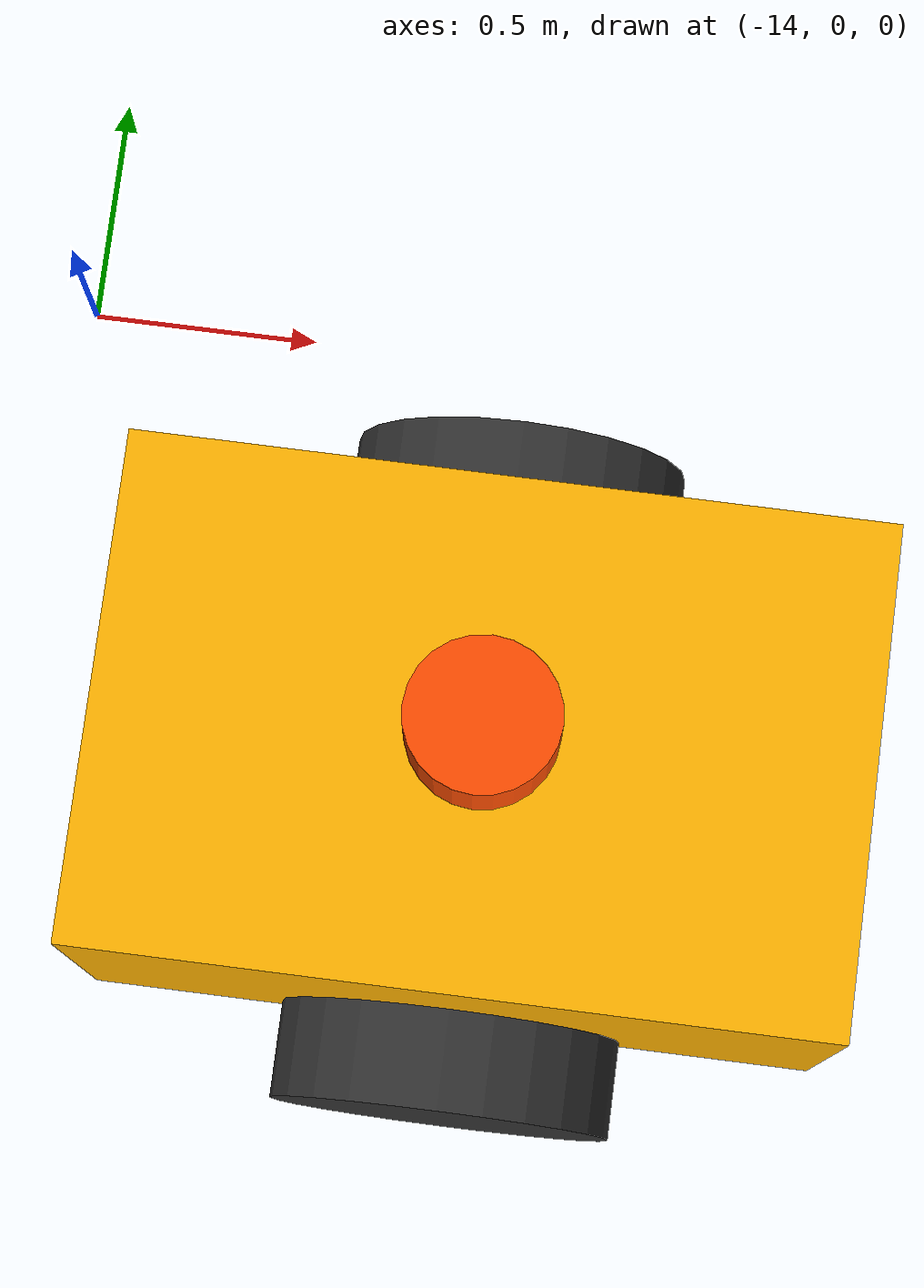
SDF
<?xml version="1.0" ?>
<sdf version="1.8">
  <!-- AMR 1 (Dock 1) -->
<model name="amr_1">
  <!-- z lowered from 0.8 -> 0.65 so the wheel bottoms sit exactly on the
       ground plane at spawn (chassis_z + wheel_z - wheel_radius = 0),
       instead of dropping 0.15 m before settling. -->
  <pose>-13 -1 0.65 0 0 0</pose>

  <link name="chassis">
    <visual name="v"><geometry><box><size>1.5 1.0 0.8</size></box></geometry><material><diffuse>1.0 0.7 0.0 1</diffuse><pbr><metal><albedo_color>1.0 0.7 0.0 1</albedo_color></metal></pbr></material></visual>
    <collision name="c"><geometry><box><size>1.5 1.0 0.8</size></box></geometry></collision>
    <!-- Corrected box inertia: Ixx=1/12 m(y^2+z^2), Iyy=1/12 m(x^2+z^2), Izz=1/12 m(x^2+y^2) for a 1.5x1.0x0.8 m, 50 kg box -->
    <inertial><mass>50</mass><inertia><ixx>6.833</ixx><iyy>12.042</iyy><izz>13.542</izz></inertia></inertial>
    <sensor name="lidar" type="gpu_lidar"><pose>0 0 0.5 0 0 0</pose><update_rate>20</update_rate><ray><scan><horizontal><samples>360</samples><resolution>1</resolution><min_angle>-3.14159</min_angle><max_angle>3.14159</max_angle></horizontal></scan><range><min>0.3</min><max>15.0</max></range></ray><always_on>1</always_on><visualize>true</visualize></sensor>
    <visual name="lidar_vis"><pose>0 0 0.5 0 0 0</pose><geometry><cylinder><radius>0.15</radius><length>0.2</length></cylinder></geometry><material><diffuse>1.0 0.3 0.0 1</diffuse><pbr><metal><albedo_color>1.0 0.3 0.0 1</albedo_color></metal></pbr></material></visual>
  </link>

  <link name="left_wheel">
    <pose>0 0.6 -0.3 -1.5707 0 0</pose>
    <visual name="v"><geometry><cylinder><radius>0.35</radius><length>0.2</length></cylinder></geometry><material><diffuse>0.2 0.2 0.2 1</diffuse></material></visual>
    <collision name="c">
      <geometry><cylinder><radius>0.35</radius><length>0.2</length></cylinder></geometry>
      <surface><friction><ode><mu>1.0</mu><mu2>1.0</mu2><fdir1>1 0 0</fdir1></ode></friction></surface>
    </collision>
    <!-- Cylinder inertia about its own axis (local Z, = spin axis): Izz=1/2 m r^2.
         Transverse: Ixx=Iyy=1/12 m(3r^2+h^2), for r=0.35, h=0.2, m=5 -->
    <inertial><mass>5</mass><inertia><ixx>0.170</ixx><iyy>0.170</iyy><izz>0.306</izz></inertia></inertial>
  </link>
  <link name="right_wheel">
    <pose>0 -0.6 -0.3 -1.5707 0 0</pose>
    <visual name="v"><geometry><cylinder><radius>0.35</radius><length>0.2</length></cylinder></geometry><material><diffuse>0.2 0.2 0.2 1</diffuse></material></visual>
    <collision name="c">
      <geometry><cylinder><radius>0.35</radius><length>0.2</length></cylinder></geometry>
      <surface><friction><ode><mu>1.0</mu><mu2>1.0</mu2><fdir1>1 0 0</fdir1></ode></friction></surface>
    </collision>
    <inertial><mass>5</mass><inertia><ixx>0.170</ixx><iyy>0.170</iyy><izz>0.306</izz></inertia></inertial>
  </link>

  <link name="front_caster">
    <pose>0.6 0 -0.5 0 0 0</pose>
    <visual name="v"><geometry><sphere><radius>0.15</radius></sphere></geometry><material><diffuse>0.1 0.1 0.1 1</diffuse></material></visual>
    <collision name="c">
      <geometry><sphere><radius>0.15</radius></sphere></geometry>
      <surface><friction><ode><mu>0.01</mu><mu2>0.01</mu2></ode></friction></surface>
    </collision>
    <inertial><mass>1</mass><inertia><ixx>0.009</ixx><iyy>0.009</iyy><izz>0.009</izz></inertia></inertial>
  </link>
  <link name="rear_caster">
    <pose>-0.6 0 -0.5 0 0 0</pose>
    <visual name="v"><geometry><sphere><radius>0.15</radius></sphere></geometry><material><diffuse>0.1 0.1 0.1 1</diffuse></material></visual>
    <collision name="c">
      <geometry><sphere><radius>0.15</radius></sphere></geometry>
      <surface><friction><ode><mu>0.01</mu><mu2>0.01</mu2></ode></friction></surface>
    </collision>
    <inertial><mass>1</mass><inertia><ixx>0.009</ixx><iyy>0.009</iyy><izz>0.009</izz></inertia></inertial>
  </link>

  <joint name="left_j" type="revolute"><parent>chassis</parent><child>left_wheel</child><axis><xyz>0 0 1</xyz></axis></joint>
  <joint name="right_j" type="revolute"><parent>chassis</parent><child>right_wheel</child><axis><xyz>0 0 1</xyz></axis></joint>
  <!-- Casters are rigidly attached; they're frictionless spheres, not
       articulated swivel wheels, so no revolute axis is needed - they
       just slide. -->
  <joint name="front_caster_j" type="fixed"><parent>chassis</parent><child>front_caster</child></joint>
  <joint name="rear_caster_j" type="fixed"><parent>chassis</parent><child>rear_caster</child></joint>

  <plugin filename="gz-sim-diff-drive-system" name="gz::sim::systems::DiffDrive">
    <left_joint>left_j</left_joint>
    <right_joint>right_j</right_joint>
    <wheel_separation>1.2</wheel_separation>
    <wheel_radius>0.35</wheel_radius>
    <odom_publish_frequency>0</odom_publish_frequency>
    <odom_topic>_unused_wheel_odom</odom_topic>
  </plugin>

  <plugin filename="gz-sim-odometry-publisher-system" name="gz::sim::systems::OdometryPublisher">
    <odom_publish_frequency>50</odom_publish_frequency>
  </plugin>

</model>
</sdf>
